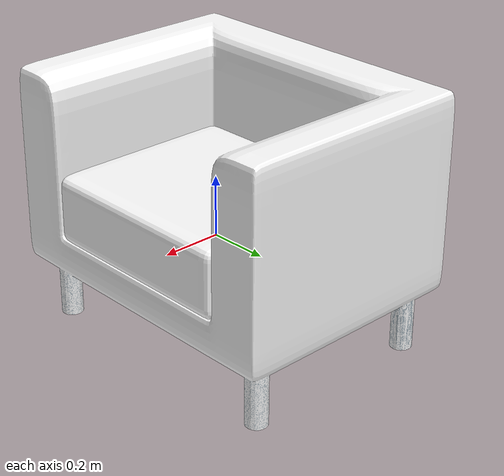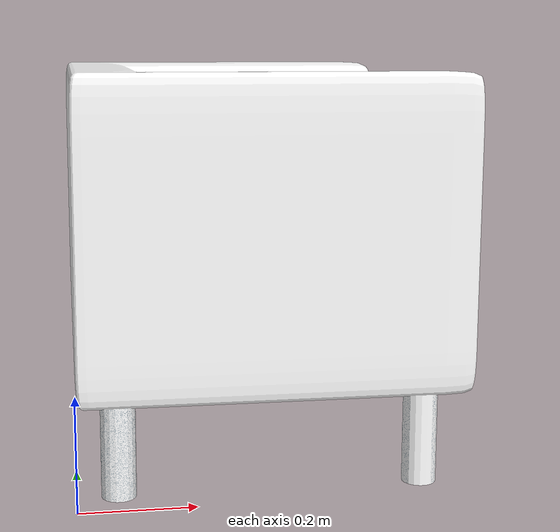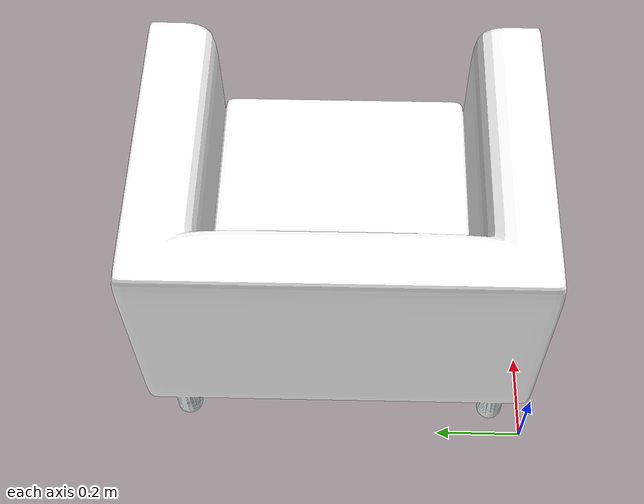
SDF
<?xml version="1.0" ?>
<sdf version="1.5">
	<model name="model_3">
		<static>1</static>
		<link name="link">
			<collision name="collision">
				<geometry>
					<mesh>
						<uri>model://model_3/meshes/model.dae</uri>
					</mesh>
				</geometry>
			</collision>
			<visual name="visual">
				<geometry>
					<mesh>
						<uri>model://model_3/meshes/model.dae</uri>
					</mesh>
				</geometry>
			</visual>
		</link>
	</model>
</sdf>
